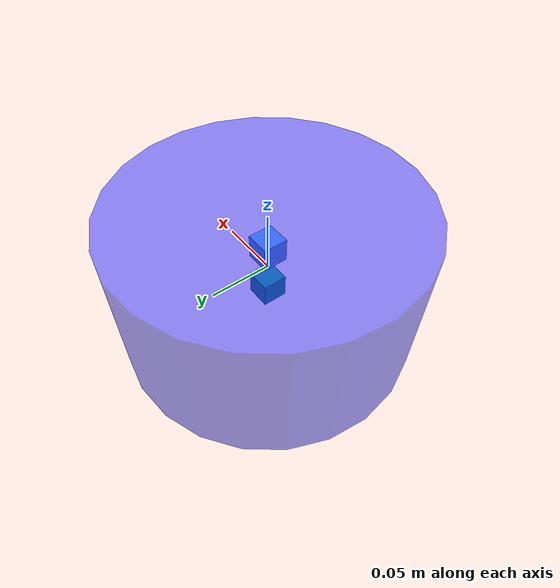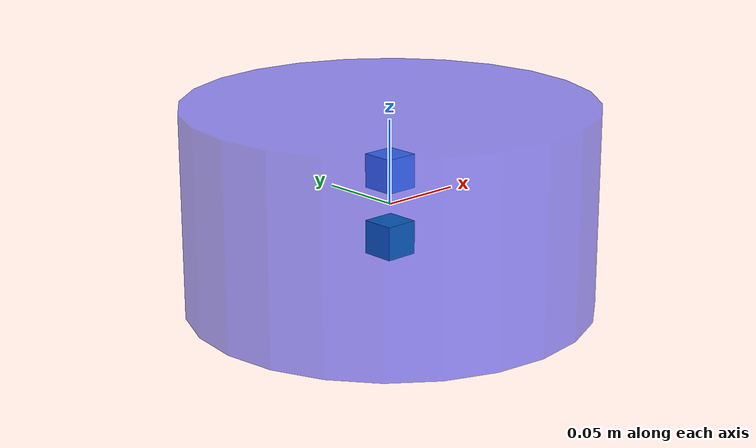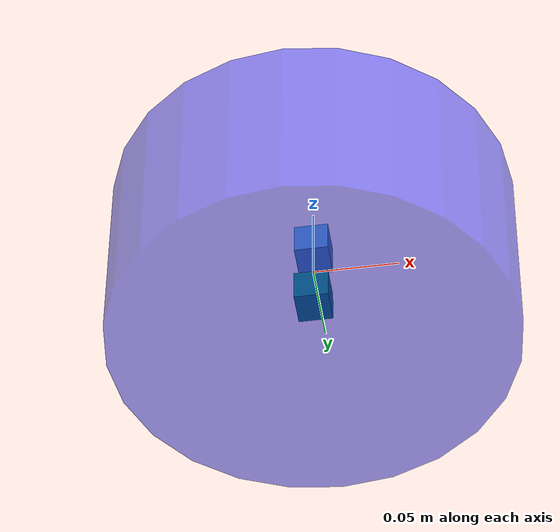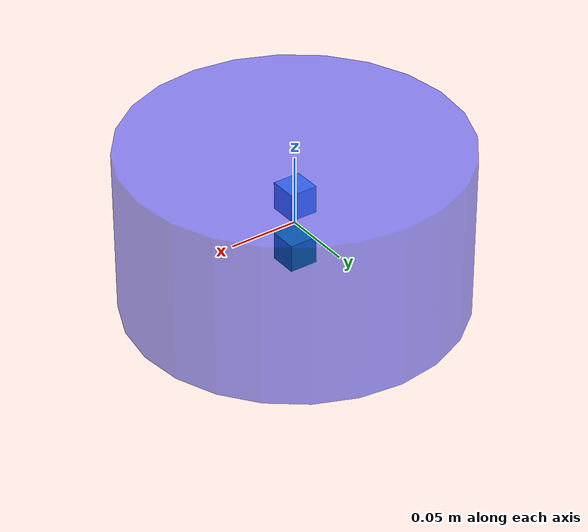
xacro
<?xml version="1.0"?>
<robot xmlns:xacro="http://www.ros.org/wiki/xacro" name="first_robot">
    <!-- Define base module -->
    <xacro:macro name="base_link" params="length radius">
        <link name="base_link">
            <visual>
                <origin xyz="0 0 0" rpy="0 0 0" />
                <geometry>
                    <cylinder length="${length}" radius="${length}" />
                </geometry>
                <material name="blue">
                    <color rgba="0.1 0.1 1.0 0.5" />
                </material>
            </visual>
        </link>
    </xacro:macro>
    <!-- Define IMU module -->
    <xacro:macro name="imu_link" params="imu_name xyz">
        <link name="${imu_name}_link">
            <visual>
                <origin xyz="0 0 0" rpy="0 0 0" />
                <geometry>
                    <box size="0.02 0.02 0.02" />
                </geometry>
            </visual>
            <material name="black">
                <color rgba="0 0 0 0.5" />
            </material>
        </link>
        <joint name="${imu_name}_joint" type="fixed">
            <parent link="base_link" />
            <child link="${imu_name}_link" />
            <origin xyz="${xyz}" />
        </joint>
    </xacro:macro>
    <!-- Invoke base_link module with parameters -->
    <xacro:base_link length="0.12" radius="0.1" />
    <!-- Invoke imu module with parameters -->
    <xacro:imu_link imu_name="imu_up" xyz="0 0 0.02" />
    <xacro:imu_link imu_name="imu_down" xyz="0 0 -0.02" />

</robot>
